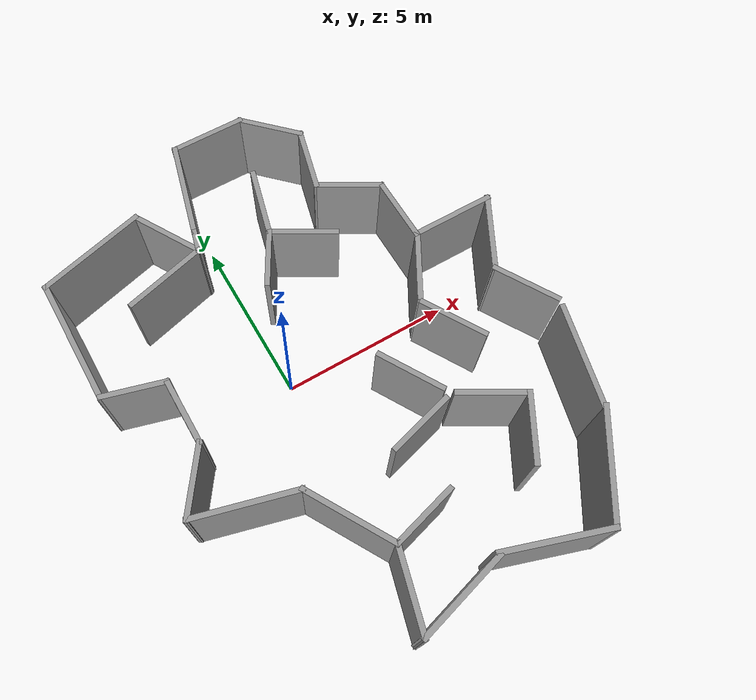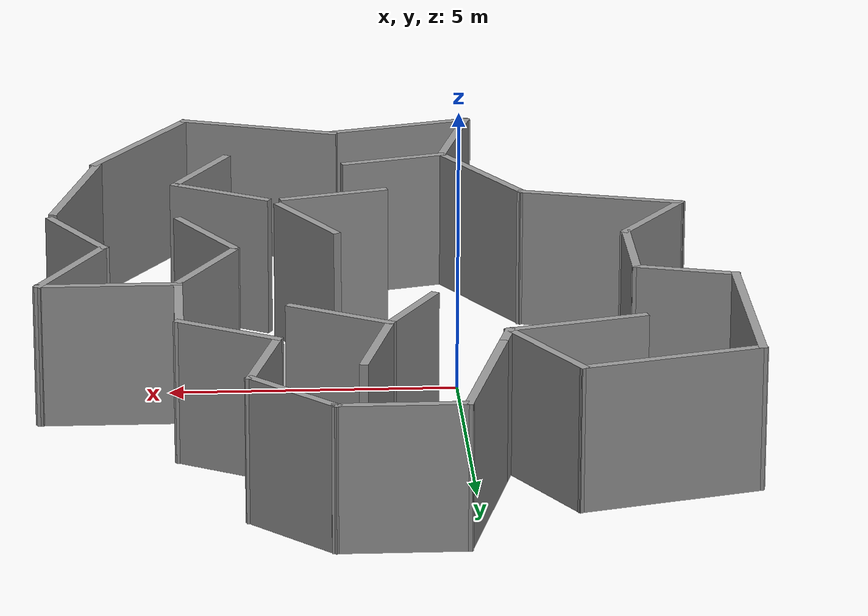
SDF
<?xml version='1.0'?>
<sdf version='1.7'>
  <model name='simple_map'>
    <pose>1.27368 -0.261846 0 0 -0 0</pose>
    <link name='Wall_0'>
      <collision name='Wall_0_Collision'>
        <geometry>
          <box>
            <size>1.75 0.15 2.5</size>
          </box>
        </geometry>
        <pose>0 0 1.25 0 -0 0</pose>
      </collision>
      <visual name='Wall_0_Visual'>
        <pose>0 0 1.25 0 -0 0</pose>
        <geometry>
          <box>
            <size>1.75 0.15 2.5</size>
          </box>
        </geometry>
        <material>
          <script>
            <uri>file://media/materials/scripts/gazebo.material</uri>
            <name>Gazebo/Grey</name>
          </script>
          <ambient>1 1 1 1</ambient>
        </material>
        <meta>
          <layer>0</layer>
        </meta>
      </visual>
      <pose>-0.321911 3.0613 0 0 -0 -2.0944</pose>
    </link>
    <link name='Wall_12'>
      <collision name='Wall_12_Collision'>
        <geometry>
          <box>
            <size>2.75 0.15 2.5</size>
          </box>
        </geometry>
        <pose>0 0 1.25 0 -0 0</pose>
      </collision>
      <visual name='Wall_12_Visual'>
        <pose>0 0 1.25 0 -0 0</pose>
        <geometry>
          <box>
            <size>2.75 0.15 2.5</size>
          </box>
        </geometry>
        <material>
          <script>
            <uri>file://media/materials/scripts/gazebo.material</uri>
            <name>Gazebo/Grey</name>
          </script>
          <ambient>1 1 1 1</ambient>
        </material>
        <meta>
          <layer>0</layer>
        </meta>
      </visual>
      <pose>-1.98299 -4.12801 0 0 -0 -1.0472</pose>
    </link>
    <link name='Wall_13'>
      <collision name='Wall_13_Collision'>
        <geometry>
          <box>
            <size>2 0.15 2.5</size>
          </box>
        </geometry>
        <pose>0 0 1.25 0 -0 0</pose>
      </collision>
      <visual name='Wall_13_Visual'>
        <pose>0 0 1.25 0 -0 0</pose>
        <geometry>
          <box>
            <size>2 0.15 2.5</size>
          </box>
        </geometry>
        <material>
          <script>
            <uri>file://media/materials/scripts/gazebo.material</uri>
            <name>Gazebo/Grey</name>
          </script>
          <ambient>1 1 1 1</ambient>
        </material>
        <meta>
          <layer>0</layer>
        </meta>
      </visual>
      <pose>-0.439506 -5.01444 0 0 -0 0.261799</pose>
    </link>
    <link name='Wall_16'>
      <collision name='Wall_16_Collision'>
        <geometry>
          <box>
            <size>2 0.15 2.5</size>
          </box>
        </geometry>
        <pose>0 0 1.25 0 -0 0</pose>
      </collision>
      <visual name='Wall_16_Visual'>
        <pose>0 0 1.25 0 -0 0</pose>
        <geometry>
          <box>
            <size>2 0.15 2.5</size>
          </box>
        </geometry>
        <material>
          <script>
            <uri>file://media/materials/scripts/gazebo.material</uri>
            <name>Gazebo/Grey</name>
          </script>
          <ambient>1 1 1 1</ambient>
        </material>
        <meta>
          <layer>0</layer>
        </meta>
      </visual>
      <pose>3.55474 2.58521 0 0 -0 -1.5708</pose>
    </link>
    <link name='Wall_18'>
      <collision name='Wall_18_Collision'>
        <geometry>
          <box>
            <size>2 0.15 2.5</size>
          </box>
        </geometry>
        <pose>0 0 1.25 0 -0 0</pose>
      </collision>
      <visual name='Wall_18_Visual'>
        <pose>0 0 1.25 0 -0 0</pose>
        <geometry>
          <box>
            <size>2 0.15 2.5</size>
          </box>
        </geometry>
        <material>
          <script>
            <uri>file://media/materials/scripts/gazebo.material</uri>
            <name>Gazebo/Grey</name>
          </script>
          <ambient>1 1 1 1</ambient>
        </material>
        <meta>
          <layer>0</layer>
        </meta>
      </visual>
      <pose>1.2583 -1.70687 0 0 -0 2.0944</pose>
    </link>
    <link name='Wall_2'>
      <collision name='Wall_2_Collision'>
        <geometry>
          <box>
            <size>2 0.15 2.5</size>
          </box>
        </geometry>
        <pose>0 0 1.25 0 -0 0</pose>
      </collision>
      <visual name='Wall_2_Visual'>
        <pose>0 0 1.25 0 -0 0</pose>
        <geometry>
          <box>
            <size>2 0.15 2.5</size>
          </box>
        </geometry>
        <material>
          <script>
            <uri>file://media/materials/scripts/gazebo.material</uri>
            <name>Gazebo/Grey</name>
          </script>
          <ambient>1 1 1 1</ambient>
        </material>
        <meta>
          <layer>0</layer>
        </meta>
      </visual>
      <pose>3.04101 -0.988618 0 0 -0 2.0944</pose>
    </link>
    <link name='Wall_20'>
      <collision name='Wall_20_Collision'>
        <geometry>
          <box>
            <size>2 0.15 2.5</size>
          </box>
        </geometry>
        <pose>0 0 1.25 0 -0 0</pose>
      </collision>
      <visual name='Wall_20_Visual'>
        <pose>0 0 1.25 0 -0 0</pose>
        <geometry>
          <box>
            <size>2 0.15 2.5</size>
          </box>
        </geometry>
        <material>
          <script>
            <uri>file://media/materials/scripts/gazebo.material</uri>
            <name>Gazebo/Grey</name>
          </script>
          <ambient>1 1 1 1</ambient>
        </material>
        <meta>
          <layer>0</layer>
        </meta>
      </visual>
      <pose>2.75631 -3.24967 0 0 -0 -0.523599</pose>
    </link>
    <link name='Wall_21'>
      <collision name='Wall_21_Collision'>
        <geometry>
          <box>
            <size>2 0.15 2.5</size>
          </box>
        </geometry>
        <pose>0 0 1.25 0 -0 0</pose>
      </collision>
      <visual name='Wall_21_Visual'>
        <pose>0 0 1.25 0 -0 0</pose>
        <geometry>
          <box>
            <size>2 0.15 2.5</size>
          </box>
        </geometry>
        <material>
          <script>
            <uri>file://media/materials/scripts/gazebo.material</uri>
            <name>Gazebo/Grey</name>
          </script>
          <ambient>1 1 1 1</ambient>
        </material>
        <meta>
          <layer>0</layer>
        </meta>
      </visual>
      <pose>3.09488 -4.51325 0 0 -0 -2.0944</pose>
    </link>
    <link name='Wall_23'>
      <collision name='Wall_23_Collision'>
        <geometry>
          <box>
            <size>2 0.15 2.5</size>
          </box>
        </geometry>
        <pose>0 0 1.25 0 -0 0</pose>
      </collision>
      <visual name='Wall_23_Visual'>
        <pose>0 0 1.25 0 -0 0</pose>
        <geometry>
          <box>
            <size>2 0.15 2.5</size>
          </box>
        </geometry>
        <material>
          <script>
            <uri>file://media/materials/scripts/gazebo.material</uri>
            <name>Gazebo/Grey</name>
          </script>
          <ambient>1 1 1 1</ambient>
        </material>
        <meta>
          <layer>0</layer>
        </meta>
      </visual>
      <pose>2.75367 3.97271 0 0 -0 2.61799</pose>
    </link>
    <link name='Wall_24'>
      <collision name='Wall_24_Collision'>
        <geometry>
          <box>
            <size>2 0.15 2.5</size>
          </box>
        </geometry>
        <pose>0 0 1.25 0 -0 0</pose>
      </collision>
      <visual name='Wall_24_Visual'>
        <pose>0 0 1.25 0 -0 0</pose>
        <geometry>
          <box>
            <size>2 0.15 2.5</size>
          </box>
        </geometry>
        <material>
          <script>
            <uri>file://media/materials/scripts/gazebo.material</uri>
            <name>Gazebo/Grey</name>
          </script>
          <ambient>1 1 1 1</ambient>
        </material>
        <meta>
          <layer>0</layer>
        </meta>
      </visual>
      <pose>2.192 5.32869 0 0 -0 1.309</pose>
    </link>
    <link name='Wall_26'>
      <collision name='Wall_26_Collision'>
        <geometry>
          <box>
            <size>2 0.15 2.5</size>
          </box>
        </geometry>
        <pose>0 0 1.25 0 -0 0</pose>
      </collision>
      <visual name='Wall_26_Visual'>
        <pose>0 0 1.25 0 -0 0</pose>
        <geometry>
          <box>
            <size>2 0.15 2.5</size>
          </box>
        </geometry>
        <material>
          <script>
            <uri>file://media/materials/scripts/gazebo.material</uri>
            <name>Gazebo/Grey</name>
          </script>
          <ambient>1 1 1 1</ambient>
        </material>
        <meta>
          <layer>0</layer>
        </meta>
      </visual>
      <pose>0.349131 4.77759 0 0 -0 1.309</pose>
    </link>
    <link name='Wall_28'>
      <collision name='Wall_28_Collision'>
        <geometry>
          <box>
            <size>3 0.15 2.5</size>
          </box>
        </geometry>
        <pose>0 0 1.25 0 -0 0</pose>
      </collision>
      <visual name='Wall_28_Visual'>
        <pose>0 0 1.25 0 -0 0</pose>
        <geometry>
          <box>
            <size>3 0.15 2.5</size>
          </box>
        </geometry>
        <material>
          <script>
            <uri>file://media/materials/scripts/gazebo.material</uri>
            <name>Gazebo/Grey</name>
          </script>
          <ambient>1 1 1 1</ambient>
        </material>
        <meta>
          <layer>0</layer>
        </meta>
      </visual>
      <pose>-4.00943 -2.63336 0 0 -0 2.87979</pose>
    </link>
    <link name='Wall_30'>
      <collision name='Wall_30_Collision'>
        <geometry>
          <box>
            <size>2 0.15 2.5</size>
          </box>
        </geometry>
        <pose>0 0 1.25 0 -0 0</pose>
      </collision>
      <visual name='Wall_30_Visual'>
        <pose>0 0 1.25 0 -0 0</pose>
        <geometry>
          <box>
            <size>2 0.15 2.5</size>
          </box>
        </geometry>
        <material>
          <script>
            <uri>file://media/materials/scripts/gazebo.material</uri>
            <name>Gazebo/Grey</name>
          </script>
          <ambient>1 1 1 1</ambient>
        </material>
        <meta>
          <layer>0</layer>
        </meta>
      </visual>
      <pose>-4.26945 0.22698 0 0 -0 -1.5708</pose>
    </link>
    <link name='Wall_38'>
      <collision name='Wall_38_Collision'>
        <geometry>
          <box>
            <size>3 0.15 2.5</size>
          </box>
        </geometry>
        <pose>0 0 1.25 0 -0 0</pose>
      </collision>
      <visual name='Wall_38_Visual'>
        <pose>0 0 1.25 0 -0 0</pose>
        <geometry>
          <box>
            <size>3 0.15 2.5</size>
          </box>
        </geometry>
        <material>
          <script>
            <uri>file://media/materials/scripts/gazebo.material</uri>
            <name>Gazebo/Grey</name>
          </script>
          <ambient>1 1 1 1</ambient>
        </material>
        <meta>
          <layer>0</layer>
        </meta>
      </visual>
      <pose>5.34405 -3.54717 0 0 -0 1.309</pose>
    </link>
    <link name='Wall_4'>
      <collision name='Wall_4_Collision'>
        <geometry>
          <box>
            <size>2 0.15 2.5</size>
          </box>
        </geometry>
        <pose>0 0 1.25 0 -0 0</pose>
      </collision>
      <visual name='Wall_4_Visual'>
        <pose>0 0 1.25 0 -0 0</pose>
        <geometry>
          <box>
            <size>2 0.15 2.5</size>
          </box>
        </geometry>
        <material>
          <script>
            <uri>file://media/materials/scripts/gazebo.material</uri>
            <name>Gazebo/Grey</name>
          </script>
          <ambient>1 1 1 1</ambient>
        </material>
        <meta>
          <layer>0</layer>
        </meta>
      </visual>
      <pose>0.737466 -3.02253 0 0 -0 0.261799</pose>
    </link>
    <link name='Wall_41'>
      <collision name='Wall_41_Collision'>
        <geometry>
          <box>
            <size>3.21051 0.15 2.5</size>
          </box>
        </geometry>
        <pose>0 0 1.25 0 -0 0</pose>
      </collision>
      <visual name='Wall_41_Visual'>
        <pose>0 0 1.25 0 -0 0</pose>
        <geometry>
          <box>
            <size>3.21051 0.15 2.5</size>
          </box>
        </geometry>
        <material>
          <script>
            <uri>file://media/materials/scripts/gazebo.material</uri>
            <name>Gazebo/Grey</name>
          </script>
          <ambient>1 1 1 1</ambient>
        </material>
        <meta>
          <layer>0</layer>
        </meta>
      </visual>
      <pose>4.18206 -6.24468 0 0 -0 -2.14109</pose>
    </link>
    <link name='Wall_42'>
      <collision name='Wall_42_Collision'>
        <geometry>
          <box>
            <size>3.04963 0.15 2.5</size>
          </box>
        </geometry>
        <pose>0 0 1.25 0 -0 0</pose>
      </collision>
      <visual name='Wall_42_Visual'>
        <pose>0 0 1.25 0 -0 0</pose>
        <geometry>
          <box>
            <size>3.04963 0.15 2.5</size>
          </box>
        </geometry>
        <material>
          <script>
            <uri>file://media/materials/scripts/gazebo.material</uri>
            <name>Gazebo/Grey</name>
          </script>
          <ambient>1 1 1 1</ambient>
        </material>
        <meta>
          <layer>0</layer>
        </meta>
      </visual>
      <pose>1.97946 -7.07738 0 0 -0 2.82209</pose>
    </link>
    <link name='Wall_43'>
      <collision name='Wall_43_Collision'>
        <geometry>
          <box>
            <size>2.75 0.15 2.5</size>
          </box>
        </geometry>
        <pose>0 0 1.25 0 -0 0</pose>
      </collision>
      <visual name='Wall_43_Visual'>
        <pose>0 0 1.25 0 -0 0</pose>
        <geometry>
          <box>
            <size>2.75 0.15 2.5</size>
          </box>
        </geometry>
        <material>
          <script>
            <uri>file://media/materials/scripts/gazebo.material</uri>
            <name>Gazebo/Grey</name>
          </script>
          <ambient>1 1 1 1</ambient>
        </material>
        <meta>
          <layer>0</layer>
        </meta>
      </visual>
      <pose>-0.652686 -7.01618 0 0 -0 -2.87979</pose>
    </link>
    <link name='Wall_45'>
      <collision name='Wall_45_Collision'>
        <geometry>
          <box>
            <size>2.32625 0.15 2.5</size>
          </box>
        </geometry>
        <pose>0 0 1.25 0 -0 0</pose>
      </collision>
      <visual name='Wall_45_Visual'>
        <pose>0 0 1.25 0 -0 0</pose>
        <geometry>
          <box>
            <size>2.32625 0.15 2.5</size>
          </box>
        </geometry>
        <material>
          <script>
            <uri>file://media/materials/scripts/gazebo.material</uri>
            <name>Gazebo/Grey</name>
          </script>
          <ambient>1 1 1 1</ambient>
        </material>
        <meta>
          <layer>0</layer>
        </meta>
      </visual>
      <pose>-1.62069 -6.30324 0 0 -0 1.30321</pose>
    </link>
    <link name='Wall_47'>
      <collision name='Wall_47_Collision'>
        <geometry>
          <box>
            <size>2 0.15 2.5</size>
          </box>
        </geometry>
        <pose>0 0 1.25 0 -0 0</pose>
      </collision>
      <visual name='Wall_47_Visual'>
        <pose>0 0 1.25 0 -0 0</pose>
        <geometry>
          <box>
            <size>2 0.15 2.5</size>
          </box>
        </geometry>
        <material>
          <script>
            <uri>file://media/materials/scripts/gazebo.material</uri>
            <name>Gazebo/Grey</name>
          </script>
          <ambient>1 1 1 1</ambient>
        </material>
        <meta>
          <layer>0</layer>
        </meta>
      </visual>
      <pose>5.29145 -1.10755 0 0 -0 2.0944</pose>
    </link>
    <link name='Wall_48'>
      <collision name='Wall_48_Collision'>
        <geometry>
          <box>
            <size>2.39169 0.15 2.5</size>
          </box>
        </geometry>
        <pose>0 0 1.25 0 -0 0</pose>
      </collision>
      <visual name='Wall_48_Visual'>
        <pose>0 0 1.25 0 -0 0</pose>
        <geometry>
          <box>
            <size>2.39169 0.15 2.5</size>
          </box>
        </geometry>
        <material>
          <script>
            <uri>file://media/materials/scripts/gazebo.material</uri>
            <name>Gazebo/Grey</name>
          </script>
          <ambient>1 1 1 1</ambient>
        </material>
        <meta>
          <layer>0</layer>
        </meta>
      </visual>
      <pose>5.36684 0.676865 0 0 -0 1.07025</pose>
    </link>
    <link name='Wall_49'>
      <collision name='Wall_49_Collision'>
        <geometry>
          <box>
            <size>2.5 0.15 2.5</size>
          </box>
        </geometry>
        <pose>0 0 1.25 0 -0 0</pose>
      </collision>
      <visual name='Wall_49_Visual'>
        <pose>0 0 1.25 0 -0 0</pose>
        <geometry>
          <box>
            <size>2.5 0.15 2.5</size>
          </box>
        </geometry>
        <material>
          <script>
            <uri>file://media/materials/scripts/gazebo.material</uri>
            <name>Gazebo/Grey</name>
          </script>
          <ambient>1 1 1 1</ambient>
        </material>
        <meta>
          <layer>0</layer>
        </meta>
      </visual>
      <pose>4.72974 1.66021 0 0 -0 3.14159</pose>
    </link>
    <link name='Wall_51'>
      <collision name='Wall_51_Collision'>
        <geometry>
          <box>
            <size>2 0.15 2.5</size>
          </box>
        </geometry>
        <pose>0 0 1.25 0 -0 0</pose>
      </collision>
      <visual name='Wall_51_Visual'>
        <pose>0 0 1.25 0 -0 0</pose>
        <geometry>
          <box>
            <size>2 0.15 2.5</size>
          </box>
        </geometry>
        <material>
          <script>
            <uri>file://media/materials/scripts/gazebo.material</uri>
            <name>Gazebo/Grey</name>
          </script>
          <ambient>1 1 1 1</ambient>
        </material>
        <meta>
          <layer>0</layer>
        </meta>
      </visual>
      <pose>1.77733 6.87624 0 0 -0 2.35619</pose>
    </link>
    <link name='Wall_52'>
      <collision name='Wall_52_Collision'>
        <geometry>
          <box>
            <size>2.25 0.15 2.5</size>
          </box>
        </geometry>
        <pose>0 0 1.25 0 -0 0</pose>
      </collision>
      <visual name='Wall_52_Visual'>
        <pose>0 0 1.25 0 -0 0</pose>
        <geometry>
          <box>
            <size>2.25 0.15 2.5</size>
          </box>
        </geometry>
        <material>
          <script>
            <uri>file://media/materials/scripts/gazebo.material</uri>
            <name>Gazebo/Grey</name>
          </script>
          <ambient>1 1 1 1</ambient>
        </material>
        <meta>
          <layer>0</layer>
        </meta>
      </visual>
      <pose>0.07326 7.53032 0 0 -0 3.14159</pose>
    </link>
    <link name='Wall_53'>
      <collision name='Wall_53_Collision'>
        <geometry>
          <box>
            <size>3 0.15 2.5</size>
          </box>
        </geometry>
        <pose>0 0 1.25 0 -0 0</pose>
      </collision>
      <visual name='Wall_53_Visual'>
        <pose>0 0 1.25 0 -0 0</pose>
        <geometry>
          <box>
            <size>3 0.15 2.5</size>
          </box>
        </geometry>
        <material>
          <script>
            <uri>file://media/materials/scripts/gazebo.material</uri>
            <name>Gazebo/Grey</name>
          </script>
          <ambient>1 1 1 1</ambient>
        </material>
        <meta>
          <layer>0</layer>
        </meta>
      </visual>
      <pose>-1.34556 6.15387 0 0 -0 -1.8326</pose>
    </link>
    <link name='Wall_54'>
      <collision name='Wall_54_Collision'>
        <geometry>
          <box>
            <size>0.75 0.15 2.5</size>
          </box>
        </geometry>
        <pose>0 0 1.25 0 -0 0</pose>
      </collision>
      <visual name='Wall_54_Visual'>
        <pose>0 0 1.25 0 -0 0</pose>
        <geometry>
          <box>
            <size>0.75 0.15 2.5</size>
          </box>
        </geometry>
        <material>
          <script>
            <uri>file://media/materials/scripts/gazebo.material</uri>
            <name>Gazebo/Grey</name>
          </script>
          <ambient>1 1 1 1</ambient>
        </material>
        <meta>
          <layer>0</layer>
        </meta>
      </visual>
      <pose>-1.79202 4.48765 0 0 -0 -1.8326</pose>
    </link>
    <link name='Wall_55'>
      <collision name='Wall_55_Collision'>
        <geometry>
          <box>
            <size>2.5 0.15 2.5</size>
          </box>
        </geometry>
        <pose>0 0 1.25 0 -0 0</pose>
      </collision>
      <visual name='Wall_55_Visual'>
        <pose>0 0 1.25 0 -0 0</pose>
        <geometry>
          <box>
            <size>2.5 0.15 2.5</size>
          </box>
        </geometry>
        <material>
          <script>
            <uri>file://media/materials/scripts/gazebo.material</uri>
            <name>Gazebo/Grey</name>
          </script>
          <ambient>1 1 1 1</ambient>
        </material>
        <meta>
          <layer>0</layer>
        </meta>
      </visual>
      <pose>-3.00463 3.89376 0 0 -0 -2.87979</pose>
    </link>
    <link name='Wall_57'>
      <collision name='Wall_57_Collision'>
        <geometry>
          <box>
            <size>2.25 0.15 2.5</size>
          </box>
        </geometry>
        <pose>0 0 1.25 0 -0 0</pose>
      </collision>
      <visual name='Wall_57_Visual'>
        <pose>0 0 1.25 0 -0 0</pose>
        <geometry>
          <box>
            <size>2.25 0.15 2.5</size>
          </box>
        </geometry>
        <material>
          <script>
            <uri>file://media/materials/scripts/gazebo.material</uri>
            <name>Gazebo/Grey</name>
          </script>
          <ambient>1 1 1 1</ambient>
        </material>
        <meta>
          <layer>0</layer>
        </meta>
      </visual>
      <pose>-2.39467 5.1072 0 0 -0 2.0944</pose>
    </link>
    <link name='Wall_58'>
      <collision name='Wall_58_Collision'>
        <geometry>
          <box>
            <size>3.25 0.15 2.5</size>
          </box>
        </geometry>
        <pose>0 0 1.25 0 -0 0</pose>
      </collision>
      <visual name='Wall_58_Visual'>
        <pose>0 0 1.25 0 -0 0</pose>
        <geometry>
          <box>
            <size>3.25 0.15 2.5</size>
          </box>
        </geometry>
        <material>
          <script>
            <uri>file://media/materials/scripts/gazebo.material</uri>
            <name>Gazebo/Grey</name>
          </script>
          <ambient>1 1 1 1</ambient>
        </material>
        <meta>
          <layer>0</layer>
        </meta>
      </visual>
      <pose>-4.41685 5.61536 0 0 -0 -2.87979</pose>
    </link>
    <link name='Wall_6'>
      <collision name='Wall_6_Collision'>
        <geometry>
          <box>
            <size>2 0.15 2.5</size>
          </box>
        </geometry>
        <pose>0 0 1.25 0 -0 0</pose>
      </collision>
      <visual name='Wall_6_Visual'>
        <pose>0 0 1.25 0 -0 0</pose>
        <geometry>
          <box>
            <size>2 0.15 2.5</size>
          </box>
        </geometry>
        <material>
          <script>
            <uri>file://media/materials/scripts/gazebo.material</uri>
            <name>Gazebo/Grey</name>
          </script>
          <ambient>1 1 1 1</ambient>
        </material>
        <meta>
          <layer>0</layer>
        </meta>
      </visual>
      <pose>0.879163 3.29162 0 0 -0 -0.523599</pose>
    </link>
    <link name='Wall_60'>
      <collision name='Wall_60_Collision'>
        <geometry>
          <box>
            <size>3.75 0.15 2.5</size>
          </box>
        </geometry>
        <pose>0 0 1.25 0 -0 0</pose>
      </collision>
      <visual name='Wall_60_Visual'>
        <pose>0 0 1.25 0 -0 0</pose>
        <geometry>
          <box>
            <size>3.75 0.15 2.5</size>
          </box>
        </geometry>
        <material>
          <script>
            <uri>file://media/materials/scripts/gazebo.material</uri>
            <name>Gazebo/Grey</name>
          </script>
          <ambient>1 1 1 1</ambient>
        </material>
        <meta>
          <layer>0</layer>
        </meta>
      </visual>
      <pose>-5.91404 3.41419 0 0 -0 -1.5708</pose>
    </link>
    <link name='Wall_61'>
      <collision name='Wall_61_Collision'>
        <geometry>
          <box>
            <size>1.85831 0.15 2.5</size>
          </box>
        </geometry>
        <pose>0 0 1.25 0 -0 0</pose>
      </collision>
      <visual name='Wall_61_Visual'>
        <pose>0 0 1.25 0 -0 0</pose>
        <geometry>
          <box>
            <size>1.85831 0.15 2.5</size>
          </box>
        </geometry>
        <material>
          <script>
            <uri>file://media/materials/scripts/gazebo.material</uri>
            <name>Gazebo/Grey</name>
          </script>
          <ambient>1 1 1 1</ambient>
        </material>
        <meta>
          <layer>0</layer>
        </meta>
      </visual>
      <pose>-5.09174 1.38308 0 0 -0 -0.27398</pose>
    </link>
    <link name='Wall_63'>
      <collision name='Wall_63_Collision'>
        <geometry>
          <box>
            <size>2.07365 0.15 2.5</size>
          </box>
        </geometry>
        <pose>0 0 1.25 0 -0 0</pose>
      </collision>
      <visual name='Wall_63_Visual'>
        <pose>0 0 1.25 0 -0 0</pose>
        <geometry>
          <box>
            <size>2.07365 0.15 2.5</size>
          </box>
        </geometry>
        <material>
          <script>
            <uri>file://media/materials/scripts/gazebo.material</uri>
            <name>Gazebo/Grey</name>
          </script>
          <ambient>1 1 1 1</ambient>
        </material>
        <meta>
          <layer>0</layer>
        </meta>
      </visual>
      <pose>-4.82766 -1.48128 0 0 -0 0.95161</pose>
    </link>
    <link name='Wall_9'>
      <collision name='Wall_9_Collision'>
        <geometry>
          <box>
            <size>2 0.15 2.5</size>
          </box>
        </geometry>
        <pose>0 0 1.25 0 -0 0</pose>
      </collision>
      <visual name='Wall_9_Visual'>
        <pose>0 0 1.25 0 -0 0</pose>
        <geometry>
          <box>
            <size>2 0.15 2.5</size>
          </box>
        </geometry>
        <material>
          <script>
            <uri>file://media/materials/scripts/gazebo.material</uri>
            <name>Gazebo/Grey</name>
          </script>
          <ambient>1 1 1 1</ambient>
        </material>
        <meta>
          <layer>0</layer>
        </meta>
      </visual>
      <pose>3.06407 0.757266 0 0 -0 -2.0944</pose>
    </link>
    <static>1</static>
  </model>
</sdf>
